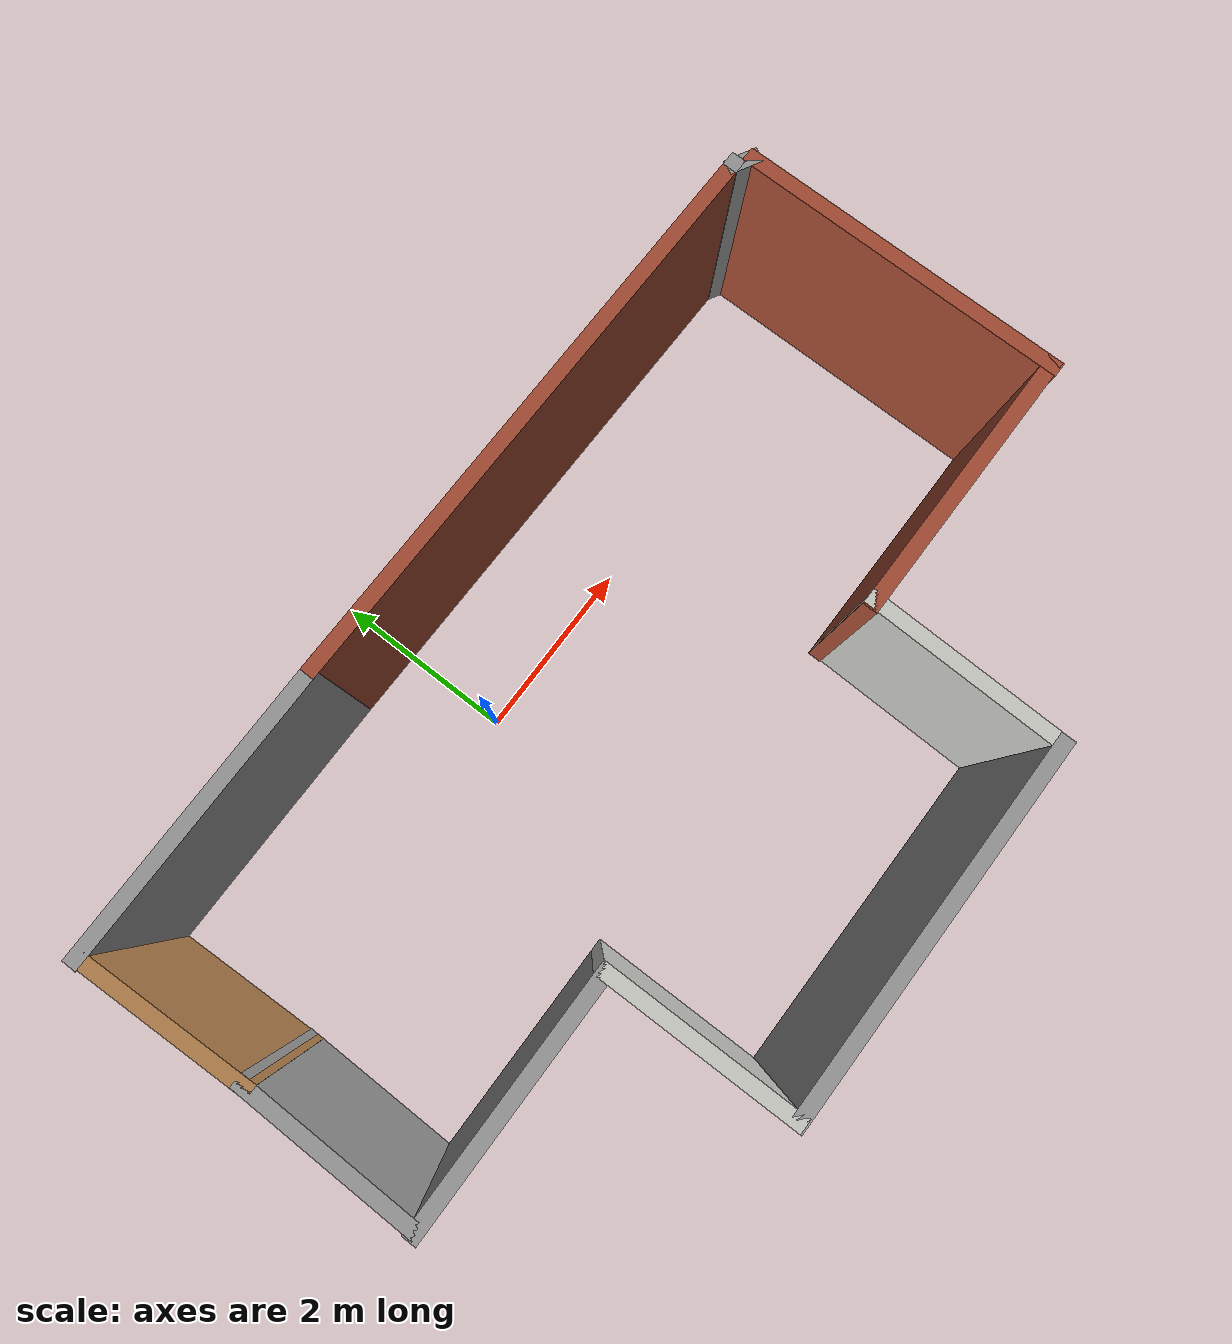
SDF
<?xml version='1.0'?>
<sdf version='1.7'>
  <model name='warehouse'>
    <pose>0.851523 -1.53989 0 0 -0 0</pose>
    <link name='Wall_0'>
      <collision name='Wall_0_Collision'>
        <geometry>
          <box>
            <size>2.69779 0.15 2.5</size>
          </box>
        </geometry>
        <pose>0 0 1.25 0 -0 0</pose>
      </collision>
      <visual name='Wall_0_Visual'>
        <pose>0 0 1.25 0 -0 0</pose>
        <geometry>
          <box>
            <size>2.69779 0.15 2.5</size>
          </box>
        </geometry>
        <material>
          <script>
            <uri>file://media/materials/scripts/gazebo.material</uri>
            <name>Gazebo/Grey</name>
          </script>
          <ambient>0 0 0 1</ambient>
        </material>
        <meta>
          <layer>0</layer>
        </meta>
      </visual>
      <pose>-3.34665 -0.808766 0 0 -0 0.00776</pose>
    </link>
    <link name='Wall_11'>
      <collision name='Wall_11_Collision'>
        <geometry>
          <box>
            <size>4.04089 0.15 2.5</size>
          </box>
        </geometry>
        <pose>0 0 1.25 0 -0 0</pose>
      </collision>
      <visual name='Wall_11_Visual'>
        <pose>0 0 1.25 0 -0 0</pose>
        <geometry>
          <box>
            <size>4.04089 0.15 2.5</size>
          </box>
        </geometry>
        <material>
          <script>
            <uri>file://media/materials/scripts/gazebo.material</uri>
            <name>Gazebo/Grey</name>
          </script>
          <ambient>0 0 0 1</ambient>
        </material>
        <meta>
          <layer>0</layer>
        </meta>
      </visual>
      <pose>-0.09695 -2.76772 0 0 -0 0.003909</pose>
    </link>
    <link name='Wall_12'>
      <collision name='Wall_12_Collision'>
        <geometry>
          <box>
            <size>2.15738 0.15 2.5</size>
          </box>
        </geometry>
        <pose>0 0 1.25 0 -0 0</pose>
      </collision>
      <visual name='Wall_12_Visual'>
        <pose>0 0 1.25 0 -0 0</pose>
        <geometry>
          <box>
            <size>2.15738 0.15 2.5</size>
          </box>
        </geometry>
        <material>
          <script>
            <uri>file://media/materials/scripts/gazebo.material</uri>
            <name>Gazebo/CeilingTiled</name>
          </script>
          <ambient>0 0 0 1</ambient>
        </material>
        <meta>
          <layer>0</layer>
        </meta>
      </visual>
      <pose>1.87129 -1.75668 0 0 -0 1.54807</pose>
    </link>
    <link name='Wall_14'>
      <collision name='Wall_14_Collision'>
        <geometry>
          <box>
            <size>2.91101 0.15 2.5</size>
          </box>
        </geometry>
        <pose>0 0 1.25 0 -0 0</pose>
      </collision>
      <visual name='Wall_14_Visual'>
        <pose>0 0 1.25 0 -0 0</pose>
        <geometry>
          <box>
            <size>2.91101 0.15 2.5</size>
          </box>
        </geometry>
        <material>
          <script>
            <uri>file://media/materials/scripts/gazebo.material</uri>
            <name>Gazebo/Bricks</name>
          </script>
          <ambient>0 0 0 1</ambient>
        </material>
        <meta>
          <layer>0</layer>
        </meta>
      </visual>
      <pose>3.25921 -0.753254 0 0 -0 0</pose>
    </link>
    <link name='Wall_16'>
      <collision name='Wall_16_Collision'>
        <geometry>
          <box>
            <size>3.5 0.15 2.5</size>
          </box>
        </geometry>
        <pose>0 0 1.25 0 -0 0</pose>
      </collision>
      <visual name='Wall_16_Visual'>
        <pose>0 0 1.25 0 -0 0</pose>
        <geometry>
          <box>
            <size>3.5 0.15 2.5</size>
          </box>
        </geometry>
        <material>
          <script>
            <uri>file://media/materials/scripts/gazebo.material</uri>
            <name>Gazebo/Bricks</name>
          </script>
          <ambient>0 0 0 1</ambient>
        </material>
        <meta>
          <layer>0</layer>
        </meta>
      </visual>
      <pose>4.63953 0.906538 0 0 -0 1.5708</pose>
    </link>
    <link name='Wall_18'>
      <collision name='Wall_18_Collision'>
        <geometry>
          <box>
            <size>6.21052 0.15 2.5</size>
          </box>
        </geometry>
        <pose>0 0 1.25 0 -0 0</pose>
      </collision>
      <visual name='Wall_18_Visual'>
        <pose>0 0 1.25 0 -0 0</pose>
        <geometry>
          <box>
            <size>6.21052 0.15 2.5</size>
          </box>
        </geometry>
        <material>
          <script>
            <uri>file://media/materials/scripts/gazebo.material</uri>
            <name>Gazebo/Bricks</name>
          </script>
          <ambient>0 0 0 1</ambient>
        </material>
        <meta>
          <layer>0</layer>
        </meta>
      </visual>
      <pose>1.46389 2.73666 0 0 -0 -0.012548</pose>
    </link>
    <link name='Wall_2'>
      <collision name='Wall_2_Collision'>
        <geometry>
          <box>
            <size>1.98059 0.15 2.5</size>
          </box>
        </geometry>
        <pose>0 0 1.25 0 -0 0</pose>
      </collision>
      <visual name='Wall_2_Visual'>
        <pose>0 0 1.25 0 -0 0</pose>
        <geometry>
          <box>
            <size>1.98059 0.15 2.5</size>
          </box>
        </geometry>
        <material>
          <script>
            <uri>file://media/materials/scripts/gazebo.material</uri>
            <name>Gazebo/Grey</name>
          </script>
          <ambient>0 0 0 1</ambient>
        </material>
        <meta>
          <layer>0</layer>
        </meta>
      </visual>
      <pose>-4.5977 0.096359 0 0 -0 1.56249</pose>
    </link>
    <link name='Wall_20'>
      <collision name='Wall_20_Collision'>
        <geometry>
          <box>
            <size>0.15 0.15 2.5</size>
          </box>
        </geometry>
        <pose>0 0 1.25 0 -0 0</pose>
      </collision>
      <visual name='Wall_20_Visual'>
        <pose>0 0 1.25 0 -0 0</pose>
        <geometry>
          <box>
            <size>0.15 0.15 2.5</size>
          </box>
        </geometry>
        <material>
          <script>
            <uri>file://media/materials/scripts/gazebo.material</uri>
            <name>Gazebo/Grey</name>
          </script>
          <ambient>1 1 1 1</ambient>
        </material>
        <meta>
          <layer>0</layer>
        </meta>
      </visual>
      <pose>4.4939 2.69863 0 0 -0 0</pose>
    </link>
    <link name='Wall_21'>
      <collision name='Wall_21_Collision'>
        <geometry>
          <box>
            <size>0.332706 0.15 2.5</size>
          </box>
        </geometry>
        <pose>0 0 1.25 0 -0 0</pose>
      </collision>
      <visual name='Wall_21_Visual'>
        <pose>0 0 1.25 0 -0 0</pose>
        <geometry>
          <box>
            <size>0.332706 0.15 2.5</size>
          </box>
        </geometry>
        <material>
          <script>
            <uri>file://media/materials/scripts/gazebo.material</uri>
            <name>Gazebo/Grey</name>
          </script>
          <ambient>0 0 0 1</ambient>
        </material>
        <meta>
          <layer>0</layer>
        </meta>
      </visual>
      <pose>4.55911 2.64009 0 0 -0 -0.49431</pose>
    </link>
    <link name='Wall_4'>
      <collision name='Wall_4_Collision'>
        <geometry>
          <box>
            <size>1.91436 0.15 2.5</size>
          </box>
        </geometry>
        <pose>0 0 1.25 0 -0 0</pose>
      </collision>
      <visual name='Wall_4_Visual'>
        <pose>0 0 1.25 0 -0 0</pose>
        <geometry>
          <box>
            <size>1.91436 0.15 2.5</size>
          </box>
        </geometry>
        <material>
          <script>
            <uri>file://media/materials/scripts/gazebo.material</uri>
            <name>Gazebo/Wood</name>
          </script>
          <ambient>0 0 0 1</ambient>
        </material>
        <meta>
          <layer>0</layer>
        </meta>
      </visual>
      <pose>-4.62051 1.87782 0 0 -0 1.60528</pose>
    </link>
    <link name='Wall_5'>
      <collision name='Wall_5_Collision'>
        <geometry>
          <box>
            <size>3.25 0.15 2.5</size>
          </box>
        </geometry>
        <pose>0 0 1.25 0 -0 0</pose>
      </collision>
      <visual name='Wall_5_Visual'>
        <pose>0 0 1.25 0 -0 0</pose>
        <geometry>
          <box>
            <size>3.25 0.15 2.5</size>
          </box>
        </geometry>
        <material>
          <script>
            <uri>file://media/materials/scripts/gazebo.material</uri>
            <name>Gazebo/Grey</name>
          </script>
          <ambient>0 0 0 1</ambient>
        </material>
        <meta>
          <layer>0</layer>
        </meta>
      </visual>
      <pose>-3.11613 2.77468 0 0 -0 0</pose>
    </link>
    <link name='Wall_7'>
      <collision name='Wall_7_Collision'>
        <geometry>
          <box>
            <size>2.11176 0.15 2.5</size>
          </box>
        </geometry>
        <pose>0 0 1.25 0 -0 0</pose>
      </collision>
      <visual name='Wall_7_Visual'>
        <pose>0 0 1.25 0 -0 0</pose>
        <geometry>
          <box>
            <size>2.11176 0.15 2.5</size>
          </box>
        </geometry>
        <material>
          <script>
            <uri>file://media/materials/scripts/gazebo.material</uri>
            <name>Gazebo/CeilingTiled</name>
          </script>
          <ambient>0 0 0 1</ambient>
        </material>
        <meta>
          <layer>0</layer>
        </meta>
      </visual>
      <pose>-2.04998 -1.7795 0 0 -0 -1.56304</pose>
    </link>
    <static>1</static>
  </model>
</sdf>
